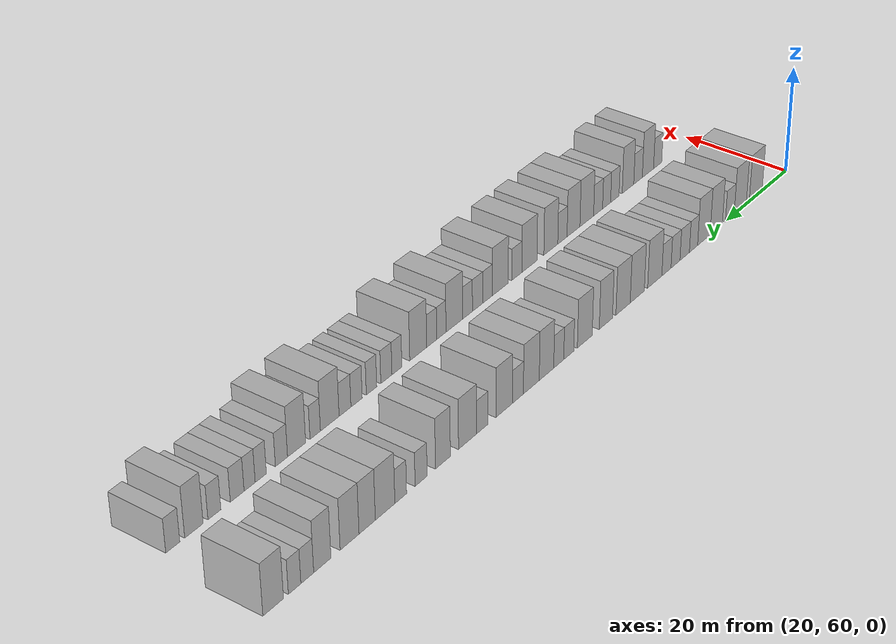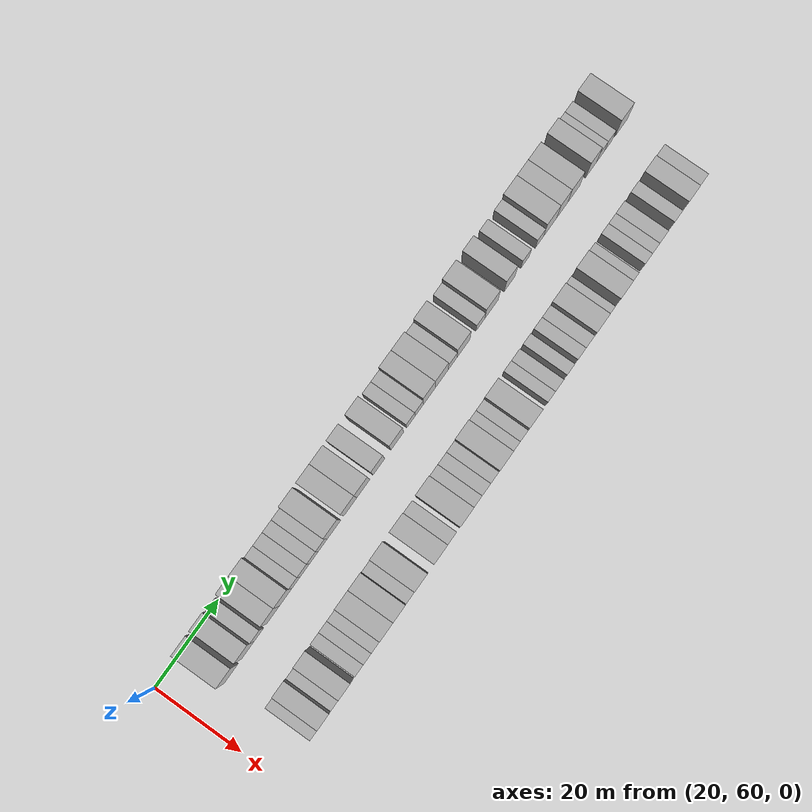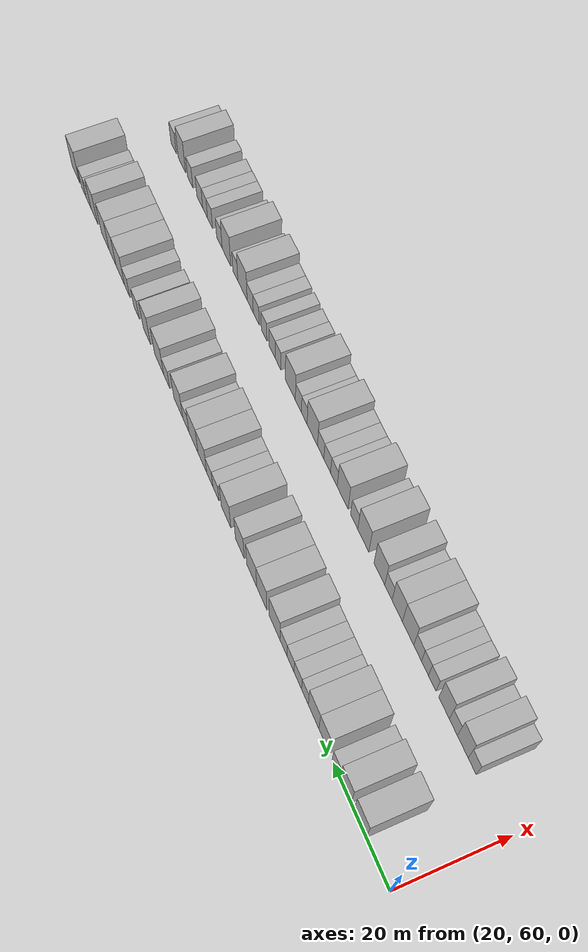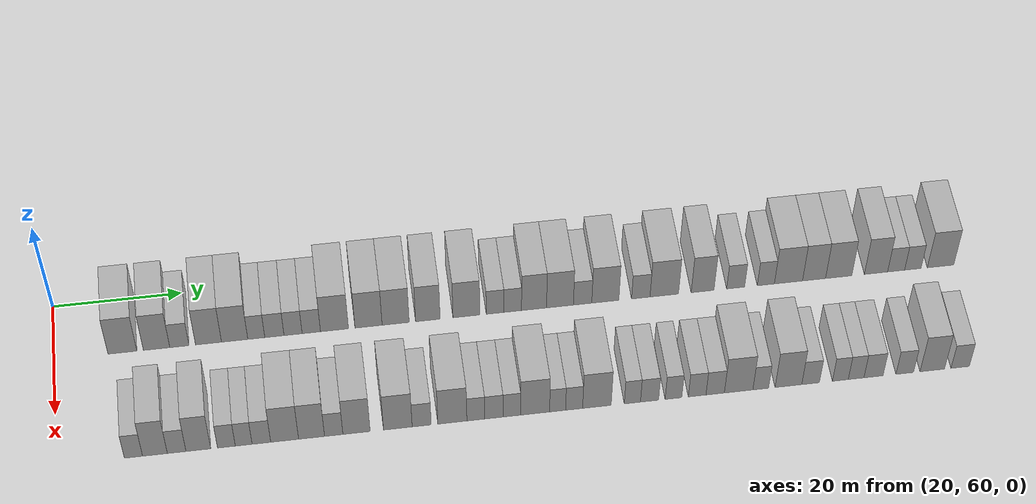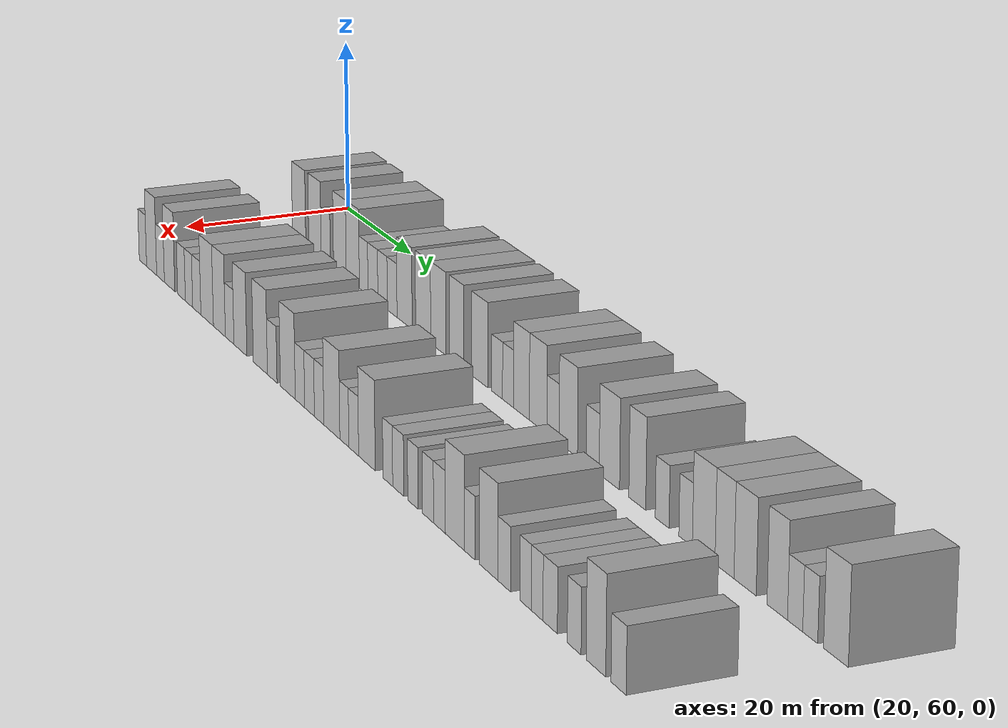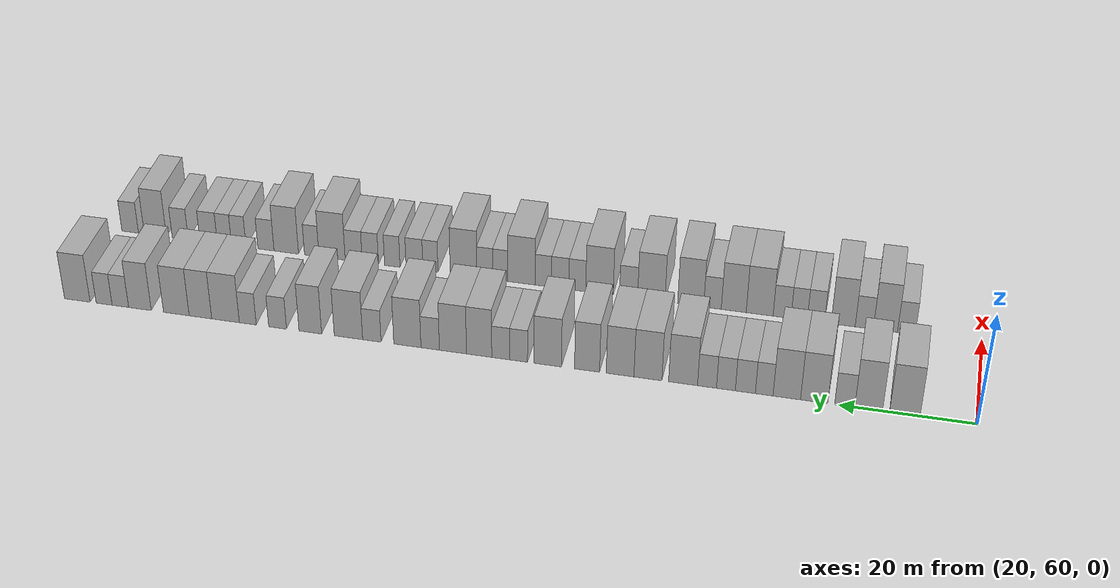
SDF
<sdf version="1.6">
 <world name="default">
  <model name="building_68">
   <static>1</static>
   <pose>25.0000 70.4082 0 0.000000 0.000000 0.000000</pose>
   <link name="link">
    <pose>0 0 4.50 0 0 0</pose>
    <collision name="collision"><geometry><box><size>10.0000 4.4041 9.0000</size></box></geometry></collision>
    <visual name="visual">
     <cast_shadows>0</cast_shadows>
     <geometry><box><size>10.0000 4.4041 9.0000</size></box></geometry>
     <material>
      <script>
       <uri>model://HANNAS_wall/materials/scripts</uri>
       <uri>model://HANNAS_wall/materials/textures</uri>
       <name>vrc/HANNAS_wall</name>
      </script>
     </material>
    </visual>
   </link>
  </model>
  <model name="building_69">
   <static>1</static>
   <pose>25.0000 75.6271 0 0.000000 0.000000 0.000000</pose>
   <link name="link">
    <pose>0 0 4.50 0 0 0</pose>
    <collision name="collision"><geometry><box><size>10.0000 4.0338 9.0000</size></box></geometry></collision>
    <visual name="visual">
     <cast_shadows>0</cast_shadows>
     <geometry><box><size>10.0000 4.0338 9.0000</size></box></geometry>
     <material>
      <script>
       <uri>model://HANNAS_wall/materials/scripts</uri>
       <uri>model://HANNAS_wall/materials/textures</uri>
       <name>vrc/HANNAS_wall</name>
      </script>
     </material>
    </visual>
   </link>
  </model>
  <model name="building_70">
   <static>1</static>
   <pose>25.0000 79.1093 0 0.000000 0.000000 0.000000</pose>
   <link name="link">
    <pose>0 0 3.00 0 0 0</pose>
    <collision name="collision"><geometry><box><size>10.0000 2.9306 6.0000</size></box></geometry></collision>
    <visual name="visual">
     <cast_shadows>0</cast_shadows>
     <geometry><box><size>10.0000 2.9306 6.0000</size></box></geometry>
     <material>
      <script>
       <uri>model://HANNAS_wall/materials/scripts</uri>
       <uri>model://HANNAS_wall/materials/textures</uri>
       <name>vrc/HANNAS_wall</name>
      </script>
     </material>
    </visual>
   </link>
  </model>
  <model name="building_71">
   <static>1</static>
   <pose>25.0000 83.5662 0 0.000000 0.000000 0.000000</pose>
   <link name="link">
    <pose>0 0 4.50 0 0 0</pose>
    <collision name="collision"><geometry><box><size>10.0000 3.9833 9.0000</size></box></geometry></collision>
    <visual name="visual">
     <cast_shadows>0</cast_shadows>
     <geometry><box><size>10.0000 3.9833 9.0000</size></box></geometry>
     <material>
      <script>
       <uri>model://HANNAS_wall/materials/scripts</uri>
       <uri>model://HANNAS_wall/materials/textures</uri>
       <name>vrc/HANNAS_wall</name>
      </script>
     </material>
    </visual>
   </link>
  </model>
  <model name="building_72">
   <static>1</static>
   <pose>25.0000 87.5739 0 0.000000 0.000000 0.000000</pose>
   <link name="link">
    <pose>0 0 4.50 0 0 0</pose>
    <collision name="collision"><geometry><box><size>10.0000 4.0321 9.0000</size></box></geometry></collision>
    <visual name="visual">
     <cast_shadows>0</cast_shadows>
     <geometry><box><size>10.0000 4.0321 9.0000</size></box></geometry>
     <material>
      <script>
       <uri>model://HANNAS_wall/materials/scripts</uri>
       <uri>model://HANNAS_wall/materials/textures</uri>
       <name>vrc/HANNAS_wall</name>
      </script>
     </material>
    </visual>
   </link>
  </model>
  <model name="building_73">
   <static>1</static>
   <pose>25.0000 90.8936 0 0.000000 0.000000 0.000000</pose>
   <link name="link">
    <pose>0 0 3.00 0 0 0</pose>
    <collision name="collision"><geometry><box><size>10.0000 2.6073 6.0000</size></box></geometry></collision>
    <visual name="visual">
     <cast_shadows>0</cast_shadows>
     <geometry><box><size>10.0000 2.6073 6.0000</size></box></geometry>
     <material>
      <script>
       <uri>model://HANNAS_wall/materials/scripts</uri>
       <uri>model://HANNAS_wall/materials/textures</uri>
       <name>vrc/HANNAS_wall</name>
      </script>
     </material>
    </visual>
   </link>
  </model>
  <model name="building_74">
   <static>1</static>
   <pose>25.0000 93.6760 0 0.000000 0.000000 0.000000</pose>
   <link name="link">
    <pose>0 0 3.00 0 0 0</pose>
    <collision name="collision"><geometry><box><size>10.0000 2.9575 6.0000</size></box></geometry></collision>
    <visual name="visual">
     <cast_shadows>0</cast_shadows>
     <geometry><box><size>10.0000 2.9575 6.0000</size></box></geometry>
     <material>
      <script>
       <uri>model://HANNAS_wall/materials/scripts</uri>
       <uri>model://HANNAS_wall/materials/textures</uri>
       <name>vrc/HANNAS_wall</name>
      </script>
     </material>
    </visual>
   </link>
  </model>
  <model name="building_75">
   <static>1</static>
   <pose>25.0000 96.5493 0 0.000000 0.000000 0.000000</pose>
   <link name="link">
    <pose>0 0 3.00 0 0 0</pose>
    <collision name="collision"><geometry><box><size>10.0000 2.7892 6.0000</size></box></geometry></collision>
    <visual name="visual">
     <cast_shadows>0</cast_shadows>
     <geometry><box><size>10.0000 2.7892 6.0000</size></box></geometry>
     <material>
      <script>
       <uri>model://HANNAS_wall/materials/scripts</uri>
       <uri>model://HANNAS_wall/materials/textures</uri>
       <name>vrc/HANNAS_wall</name>
      </script>
     </material>
    </visual>
   </link>
  </model>
  <model name="building_76">
   <static>1</static>
   <pose>25.0000 99.3554 0 0.000000 0.000000 0.000000</pose>
   <link name="link">
    <pose>0 0 3.00 0 0 0</pose>
    <collision name="collision"><geometry><box><size>10.0000 2.8229 6.0000</size></box></geometry></collision>
    <visual name="visual">
     <cast_shadows>0</cast_shadows>
     <geometry><box><size>10.0000 2.8229 6.0000</size></box></geometry>
     <material>
      <script>
       <uri>model://HANNAS_wall/materials/scripts</uri>
       <uri>model://HANNAS_wall/materials/textures</uri>
       <name>vrc/HANNAS_wall</name>
      </script>
     </material>
    </visual>
   </link>
  </model>
  <model name="building_77">
   <static>1</static>
   <pose>25.0000 102.9287 0 0.000000 0.000000 0.000000</pose>
   <link name="link">
    <pose>0 0 4.50 0 0 0</pose>
    <collision name="collision"><geometry><box><size>10.0000 4.3237 9.0000</size></box></geometry></collision>
    <visual name="visual">
     <cast_shadows>0</cast_shadows>
     <geometry><box><size>10.0000 4.3237 9.0000</size></box></geometry>
     <material>
      <script>
       <uri>model://HANNAS_wall/materials/scripts</uri>
       <uri>model://HANNAS_wall/materials/textures</uri>
       <name>vrc/HANNAS_wall</name>
      </script>
     </material>
    </visual>
   </link>
  </model>
  <model name="building_78">
   <static>1</static>
   <pose>25.0000 108.1905 0 0.000000 0.000000 0.000000</pose>
   <link name="link">
    <pose>0 0 4.50 0 0 0</pose>
    <collision name="collision"><geometry><box><size>10.0000 4.1999 9.0000</size></box></geometry></collision>
    <visual name="visual">
     <cast_shadows>0</cast_shadows>
     <geometry><box><size>10.0000 4.1999 9.0000</size></box></geometry>
     <material>
      <script>
       <uri>model://HANNAS_wall/materials/scripts</uri>
       <uri>model://HANNAS_wall/materials/textures</uri>
       <name>vrc/HANNAS_wall</name>
      </script>
     </material>
    </visual>
   </link>
  </model>
  <model name="building_79">
   <static>1</static>
   <pose>25.0000 112.3857 0 0.000000 0.000000 0.000000</pose>
   <link name="link">
    <pose>0 0 4.50 0 0 0</pose>
    <collision name="collision"><geometry><box><size>10.0000 4.1905 9.0000</size></box></geometry></collision>
    <visual name="visual">
     <cast_shadows>0</cast_shadows>
     <geometry><box><size>10.0000 4.1905 9.0000</size></box></geometry>
     <material>
      <script>
       <uri>model://HANNAS_wall/materials/scripts</uri>
       <uri>model://HANNAS_wall/materials/textures</uri>
       <name>vrc/HANNAS_wall</name>
      </script>
     </material>
    </visual>
   </link>
  </model>
  <model name="building_80">
   <static>1</static>
   <pose>25.0000 117.3806 0 0.000000 0.000000 0.000000</pose>
   <link name="link">
    <pose>0 0 4.50 0 0 0</pose>
    <collision name="collision"><geometry><box><size>10.0000 3.7992 9.0000</size></box></geometry></collision>
    <visual name="visual">
     <cast_shadows>0</cast_shadows>
     <geometry><box><size>10.0000 3.7992 9.0000</size></box></geometry>
     <material>
      <script>
       <uri>model://HANNAS_wall/materials/scripts</uri>
       <uri>model://HANNAS_wall/materials/textures</uri>
       <name>vrc/HANNAS_wall</name>
      </script>
     </material>
    </visual>
   </link>
  </model>
  <model name="building_81">
   <static>1</static>
   <pose>25.0000 123.3707 0 0.000000 0.000000 0.000000</pose>
   <link name="link">
    <pose>0 0 4.50 0 0 0</pose>
    <collision name="collision"><geometry><box><size>10.0000 4.1810 9.0000</size></box></geometry></collision>
    <visual name="visual">
     <cast_shadows>0</cast_shadows>
     <geometry><box><size>10.0000 4.1810 9.0000</size></box></geometry>
     <material>
      <script>
       <uri>model://HANNAS_wall/materials/scripts</uri>
       <uri>model://HANNAS_wall/materials/textures</uri>
       <name>vrc/HANNAS_wall</name>
      </script>
     </material>
    </visual>
   </link>
  </model>
  <model name="building_82">
   <static>1</static>
   <pose>25.0000 127.8391 0 0.000000 0.000000 0.000000</pose>
   <link name="link">
    <pose>0 0 3.00 0 0 0</pose>
    <collision name="collision"><geometry><box><size>10.0000 2.7557 6.0000</size></box></geometry></collision>
    <visual name="visual">
     <cast_shadows>0</cast_shadows>
     <geometry><box><size>10.0000 2.7557 6.0000</size></box></geometry>
     <material>
      <script>
       <uri>model://HANNAS_wall/materials/scripts</uri>
       <uri>model://HANNAS_wall/materials/textures</uri>
       <name>vrc/HANNAS_wall</name>
      </script>
     </material>
    </visual>
   </link>
  </model>
  <model name="building_83">
   <static>1</static>
   <pose>25.0000 130.5859 0 0.000000 0.000000 0.000000</pose>
   <link name="link">
    <pose>0 0 3.00 0 0 0</pose>
    <collision name="collision"><geometry><box><size>10.0000 2.7380 6.0000</size></box></geometry></collision>
    <visual name="visual">
     <cast_shadows>0</cast_shadows>
     <geometry><box><size>10.0000 2.7380 6.0000</size></box></geometry>
     <material>
      <script>
       <uri>model://HANNAS_wall/materials/scripts</uri>
       <uri>model://HANNAS_wall/materials/textures</uri>
       <name>vrc/HANNAS_wall</name>
      </script>
     </material>
    </visual>
   </link>
  </model>
  <model name="building_84">
   <static>1</static>
   <pose>25.0000 133.9101 0 0.000000 0.000000 0.000000</pose>
   <link name="link">
    <pose>0 0 4.50 0 0 0</pose>
    <collision name="collision"><geometry><box><size>10.0000 3.9104 9.0000</size></box></geometry></collision>
    <visual name="visual">
     <cast_shadows>0</cast_shadows>
     <geometry><box><size>10.0000 3.9104 9.0000</size></box></geometry>
     <material>
      <script>
       <uri>model://HANNAS_wall/materials/scripts</uri>
       <uri>model://HANNAS_wall/materials/textures</uri>
       <name>vrc/HANNAS_wall</name>
      </script>
     </material>
    </visual>
   </link>
  </model>
  <model name="building_85">
   <static>1</static>
   <pose>25.0000 137.9681 0 0.000000 0.000000 0.000000</pose>
   <link name="link">
    <pose>0 0 4.50 0 0 0</pose>
    <collision name="collision"><geometry><box><size>10.0000 4.2056 9.0000</size></box></geometry></collision>
    <visual name="visual">
     <cast_shadows>0</cast_shadows>
     <geometry><box><size>10.0000 4.2056 9.0000</size></box></geometry>
     <material>
      <script>
       <uri>model://HANNAS_wall/materials/scripts</uri>
       <uri>model://HANNAS_wall/materials/textures</uri>
       <name>vrc/HANNAS_wall</name>
      </script>
     </material>
    </visual>
   </link>
  </model>
  <model name="building_86">
   <static>1</static>
   <pose>25.0000 141.5095 0 0.000000 0.000000 0.000000</pose>
   <link name="link">
    <pose>0 0 3.00 0 0 0</pose>
    <collision name="collision"><geometry><box><size>10.0000 2.8770 6.0000</size></box></geometry></collision>
    <visual name="visual">
     <cast_shadows>0</cast_shadows>
     <geometry><box><size>10.0000 2.8770 6.0000</size></box></geometry>
     <material>
      <script>
       <uri>model://HANNAS_wall/materials/scripts</uri>
       <uri>model://HANNAS_wall/materials/textures</uri>
       <name>vrc/HANNAS_wall</name>
      </script>
     </material>
    </visual>
   </link>
  </model>
  <model name="building_87">
   <static>1</static>
   <pose>25.0000 145.0721 0 0.000000 0.000000 0.000000</pose>
   <link name="link">
    <pose>0 0 4.50 0 0 0</pose>
    <collision name="collision"><geometry><box><size>10.0000 4.2482 9.0000</size></box></geometry></collision>
    <visual name="visual">
     <cast_shadows>0</cast_shadows>
     <geometry><box><size>10.0000 4.2482 9.0000</size></box></geometry>
     <material>
      <script>
       <uri>model://HANNAS_wall/materials/scripts</uri>
       <uri>model://HANNAS_wall/materials/textures</uri>
       <name>vrc/HANNAS_wall</name>
      </script>
     </material>
    </visual>
   </link>
  </model>
  <model name="building_88">
   <static>1</static>
   <pose>25.0000 150.6475 0 0.000000 0.000000 0.000000</pose>
   <link name="link">
    <pose>0 0 3.00 0 0 0</pose>
    <collision name="collision"><geometry><box><size>10.0000 2.9027 6.0000</size></box></geometry></collision>
    <visual name="visual">
     <cast_shadows>0</cast_shadows>
     <geometry><box><size>10.0000 2.9027 6.0000</size></box></geometry>
     <material>
      <script>
       <uri>model://HANNAS_wall/materials/scripts</uri>
       <uri>model://HANNAS_wall/materials/textures</uri>
       <name>vrc/HANNAS_wall</name>
      </script>
     </material>
    </visual>
   </link>
  </model>
  <model name="building_89">
   <static>1</static>
   <pose>25.0000 154.3405 0 0.000000 0.000000 0.000000</pose>
   <link name="link">
    <pose>0 0 4.50 0 0 0</pose>
    <collision name="collision"><geometry><box><size>10.0000 4.4834 9.0000</size></box></geometry></collision>
    <visual name="visual">
     <cast_shadows>0</cast_shadows>
     <geometry><box><size>10.0000 4.4834 9.0000</size></box></geometry>
     <material>
      <script>
       <uri>model://HANNAS_wall/materials/scripts</uri>
       <uri>model://HANNAS_wall/materials/textures</uri>
       <name>vrc/HANNAS_wall</name>
      </script>
     </material>
    </visual>
   </link>
  </model>
  <model name="building_90">
   <static>1</static>
   <pose>25.0000 160.3833 0 0.000000 0.000000 0.000000</pose>
   <link name="link">
    <pose>0 0 4.50 0 0 0</pose>
    <collision name="collision"><geometry><box><size>10.0000 3.6021 9.0000</size></box></geometry></collision>
    <visual name="visual">
     <cast_shadows>0</cast_shadows>
     <geometry><box><size>10.0000 3.6021 9.0000</size></box></geometry>
     <material>
      <script>
       <uri>model://HANNAS_wall/materials/scripts</uri>
       <uri>model://HANNAS_wall/materials/textures</uri>
       <name>vrc/HANNAS_wall</name>
      </script>
     </material>
    </visual>
   </link>
  </model>
  <model name="building_91">
   <static>1</static>
   <pose>25.0000 165.6106 0 0.000000 0.000000 0.000000</pose>
   <link name="link">
    <pose>0 0 3.00 0 0 0</pose>
    <collision name="collision"><geometry><box><size>10.0000 2.8525 6.0000</size></box></geometry></collision>
    <visual name="visual">
     <cast_shadows>0</cast_shadows>
     <geometry><box><size>10.0000 2.8525 6.0000</size></box></geometry>
     <material>
      <script>
       <uri>model://HANNAS_wall/materials/scripts</uri>
       <uri>model://HANNAS_wall/materials/textures</uri>
       <name>vrc/HANNAS_wall</name>
      </script>
     </material>
    </visual>
   </link>
  </model>
  <model name="building_92">
   <static>1</static>
   <pose>25.0000 170.3947 0 0.000000 0.000000 0.000000</pose>
   <link name="link">
    <pose>0 0 3.00 0 0 0</pose>
    <collision name="collision"><geometry><box><size>10.0000 2.7158 6.0000</size></box></geometry></collision>
    <visual name="visual">
     <cast_shadows>0</cast_shadows>
     <geometry><box><size>10.0000 2.7158 6.0000</size></box></geometry>
     <material>
      <script>
       <uri>model://HANNAS_wall/materials/scripts</uri>
       <uri>model://HANNAS_wall/materials/textures</uri>
       <name>vrc/HANNAS_wall</name>
      </script>
     </material>
    </visual>
   </link>
  </model>
  <model name="building_93">
   <static>1</static>
   <pose>25.0000 173.9853 0 0.000000 0.000000 0.000000</pose>
   <link name="link">
    <pose>0 0 4.50 0 0 0</pose>
    <collision name="collision"><geometry><box><size>10.0000 4.4653 9.0000</size></box></geometry></collision>
    <visual name="visual">
     <cast_shadows>0</cast_shadows>
     <geometry><box><size>10.0000 4.4653 9.0000</size></box></geometry>
     <material>
      <script>
       <uri>model://HANNAS_wall/materials/scripts</uri>
       <uri>model://HANNAS_wall/materials/textures</uri>
       <name>vrc/HANNAS_wall</name>
      </script>
     </material>
    </visual>
   </link>
  </model>
  <model name="building_94">
   <static>1</static>
   <pose>25.0000 178.0487 0 0.000000 0.000000 0.000000</pose>
   <link name="link">
    <pose>0 0 4.50 0 0 0</pose>
    <collision name="collision"><geometry><box><size>10.0000 3.6616 9.0000</size></box></geometry></collision>
    <visual name="visual">
     <cast_shadows>0</cast_shadows>
     <geometry><box><size>10.0000 3.6616 9.0000</size></box></geometry>
     <material>
      <script>
       <uri>model://HANNAS_wall/materials/scripts</uri>
       <uri>model://HANNAS_wall/materials/textures</uri>
       <name>vrc/HANNAS_wall</name>
      </script>
     </material>
    </visual>
   </link>
  </model>
  <model name="building_95">
   <static>1</static>
   <pose>25.0000 181.9697 0 0.000000 0.000000 0.000000</pose>
   <link name="link">
    <pose>0 0 4.50 0 0 0</pose>
    <collision name="collision"><geometry><box><size>10.0000 4.1803 9.0000</size></box></geometry></collision>
    <visual name="visual">
     <cast_shadows>0</cast_shadows>
     <geometry><box><size>10.0000 4.1803 9.0000</size></box></geometry>
     <material>
      <script>
       <uri>model://HANNAS_wall/materials/scripts</uri>
       <uri>model://HANNAS_wall/materials/textures</uri>
       <name>vrc/HANNAS_wall</name>
      </script>
     </material>
    </visual>
   </link>
  </model>
  <model name="building_96">
   <static>1</static>
   <pose>25.0000 187.9160 0 0.000000 0.000000 0.000000</pose>
   <link name="link">
    <pose>0 0 4.50 0 0 0</pose>
    <collision name="collision"><geometry><box><size>10.0000 3.7124 9.0000</size></box></geometry></collision>
    <visual name="visual">
     <cast_shadows>0</cast_shadows>
     <geometry><box><size>10.0000 3.7124 9.0000</size></box></geometry>
     <material>
      <script>
       <uri>model://HANNAS_wall/materials/scripts</uri>
       <uri>model://HANNAS_wall/materials/textures</uri>
       <name>vrc/HANNAS_wall</name>
      </script>
     </material>
    </visual>
   </link>
  </model>
  <model name="building_97">
   <static>1</static>
   <pose>25.0000 191.1307 0 0.000000 0.000000 0.000000</pose>
   <link name="link">
    <pose>0 0 3.00 0 0 0</pose>
    <collision name="collision"><geometry><box><size>10.0000 2.7171 6.0000</size></box></geometry></collision>
    <visual name="visual">
     <cast_shadows>0</cast_shadows>
     <geometry><box><size>10.0000 2.7171 6.0000</size></box></geometry>
     <material>
      <script>
       <uri>model://HANNAS_wall/materials/scripts</uri>
       <uri>model://HANNAS_wall/materials/textures</uri>
       <name>vrc/HANNAS_wall</name>
      </script>
     </material>
    </visual>
   </link>
  </model>
  <model name="building_98">
   <static>1</static>
   <pose>25.0000 193.8050 0 0.000000 0.000000 0.000000</pose>
   <link name="link">
    <pose>0 0 3.00 0 0 0</pose>
    <collision name="collision"><geometry><box><size>10.0000 2.6315 6.0000</size></box></geometry></collision>
    <visual name="visual">
     <cast_shadows>0</cast_shadows>
     <geometry><box><size>10.0000 2.6315 6.0000</size></box></geometry>
     <material>
      <script>
       <uri>model://HANNAS_wall/materials/scripts</uri>
       <uri>model://HANNAS_wall/materials/textures</uri>
       <name>vrc/HANNAS_wall</name>
      </script>
     </material>
    </visual>
   </link>
  </model>
  <model name="building_99">
   <static>1</static>
   <pose>25.0000 198.2420 0 0.000000 0.000000 0.000000</pose>
   <link name="link">
    <pose>0 0 4.50 0 0 0</pose>
    <collision name="collision"><geometry><box><size>10.0000 4.2426 9.0000</size></box></geometry></collision>
    <visual name="visual">
     <cast_shadows>0</cast_shadows>
     <geometry><box><size>10.0000 4.2426 9.0000</size></box></geometry>
     <material>
      <script>
       <uri>model://HANNAS_wall/materials/scripts</uri>
       <uri>model://HANNAS_wall/materials/textures</uri>
       <name>vrc/HANNAS_wall</name>
      </script>
     </material>
    </visual>
   </link>
  </model>
  <model name="building_168">
   <static>1</static>
   <pose>44.0000 71.3753 0 0.000000 0.000000 0.000000</pose>
   <link name="link">
    <pose>0 0 3.00 0 0 0</pose>
    <collision name="collision"><geometry><box><size>10.0000 2.6836 6.0000</size></box></geometry></collision>
    <visual name="visual">
     <cast_shadows>0</cast_shadows>
     <geometry><box><size>10.0000 2.6836 6.0000</size></box></geometry>
     <material>
      <script>
       <uri>model://HANNAS_wall/materials/scripts</uri>
       <uri>model://HANNAS_wall/materials/textures</uri>
       <name>vrc/HANNAS_wall</name>
      </script>
     </material>
    </visual>
   </link>
  </model>
  <model name="building_169">
   <static>1</static>
   <pose>44.0000 74.5499 0 0.000000 0.000000 0.000000</pose>
   <link name="link">
    <pose>0 0 4.50 0 0 0</pose>
    <collision name="collision"><geometry><box><size>10.0000 3.6655 9.0000</size></box></geometry></collision>
    <visual name="visual">
     <cast_shadows>0</cast_shadows>
     <geometry><box><size>10.0000 3.6655 9.0000</size></box></geometry>
     <material>
      <script>
       <uri>model://HANNAS_wall/materials/scripts</uri>
       <uri>model://HANNAS_wall/materials/textures</uri>
       <name>vrc/HANNAS_wall</name>
      </script>
     </material>
    </visual>
   </link>
  </model>
  <model name="building_170">
   <static>1</static>
   <pose>44.0000 77.7664 0 0.000000 0.000000 0.000000</pose>
   <link name="link">
    <pose>0 0 3.00 0 0 0</pose>
    <collision name="collision"><geometry><box><size>10.0000 2.7676 6.0000</size></box></geometry></collision>
    <visual name="visual">
     <cast_shadows>0</cast_shadows>
     <geometry><box><size>10.0000 2.7676 6.0000</size></box></geometry>
     <material>
      <script>
       <uri>model://HANNAS_wall/materials/scripts</uri>
       <uri>model://HANNAS_wall/materials/textures</uri>
       <name>vrc/HANNAS_wall</name>
      </script>
     </material>
    </visual>
   </link>
  </model>
  <model name="building_171">
   <static>1</static>
   <pose>44.0000 80.9912 0 0.000000 0.000000 0.000000</pose>
   <link name="link">
    <pose>0 0 4.50 0 0 0</pose>
    <collision name="collision"><geometry><box><size>10.0000 3.6820 9.0000</size></box></geometry></collision>
    <visual name="visual">
     <cast_shadows>0</cast_shadows>
     <geometry><box><size>10.0000 3.6820 9.0000</size></box></geometry>
     <material>
      <script>
       <uri>model://HANNAS_wall/materials/scripts</uri>
       <uri>model://HANNAS_wall/materials/textures</uri>
       <name>vrc/HANNAS_wall</name>
      </script>
     </material>
    </visual>
   </link>
  </model>
  <model name="building_172">
   <static>1</static>
   <pose>44.0000 85.1569 0 0.000000 0.000000 0.000000</pose>
   <link name="link">
    <pose>0 0 3.00 0 0 0</pose>
    <collision name="collision"><geometry><box><size>10.0000 2.6494 6.0000</size></box></geometry></collision>
    <visual name="visual">
     <cast_shadows>0</cast_shadows>
     <geometry><box><size>10.0000 2.6494 6.0000</size></box></geometry>
     <material>
      <script>
       <uri>model://HANNAS_wall/materials/scripts</uri>
       <uri>model://HANNAS_wall/materials/textures</uri>
       <name>vrc/HANNAS_wall</name>
      </script>
     </material>
    </visual>
   </link>
  </model>
  <model name="building_173">
   <static>1</static>
   <pose>44.0000 87.7339 0 0.000000 0.000000 0.000000</pose>
   <link name="link">
    <pose>0 0 3.00 0 0 0</pose>
    <collision name="collision"><geometry><box><size>10.0000 2.5047 6.0000</size></box></geometry></collision>
    <visual name="visual">
     <cast_shadows>0</cast_shadows>
     <geometry><box><size>10.0000 2.5047 6.0000</size></box></geometry>
     <material>
      <script>
       <uri>model://HANNAS_wall/materials/scripts</uri>
       <uri>model://HANNAS_wall/materials/textures</uri>
       <name>vrc/HANNAS_wall</name>
      </script>
     </material>
    </visual>
   </link>
  </model>
  <model name="building_174">
   <static>1</static>
   <pose>44.0000 90.3691 0 0.000000 0.000000 0.000000</pose>
   <link name="link">
    <pose>0 0 3.00 0 0 0</pose>
    <collision name="collision"><geometry><box><size>10.0000 2.7655 6.0000</size></box></geometry></collision>
    <visual name="visual">
     <cast_shadows>0</cast_shadows>
     <geometry><box><size>10.0000 2.7655 6.0000</size></box></geometry>
     <material>
      <script>
       <uri>model://HANNAS_wall/materials/scripts</uri>
       <uri>model://HANNAS_wall/materials/textures</uri>
       <name>vrc/HANNAS_wall</name>
      </script>
     </material>
    </visual>
   </link>
  </model>
  <model name="building_175">
   <static>1</static>
   <pose>44.0000 93.8347 0 0.000000 0.000000 0.000000</pose>
   <link name="link">
    <pose>0 0 4.50 0 0 0</pose>
    <collision name="collision"><geometry><box><size>10.0000 4.1658 9.0000</size></box></geometry></collision>
    <visual name="visual">
     <cast_shadows>0</cast_shadows>
     <geometry><box><size>10.0000 4.1658 9.0000</size></box></geometry>
     <material>
      <script>
       <uri>model://HANNAS_wall/materials/scripts</uri>
       <uri>model://HANNAS_wall/materials/textures</uri>
       <name>vrc/HANNAS_wall</name>
      </script>
     </material>
    </visual>
   </link>
  </model>
  <model name="building_176">
   <static>1</static>
   <pose>44.0000 97.8576 0 0.000000 0.000000 0.000000</pose>
   <link name="link">
    <pose>0 0 4.50 0 0 0</pose>
    <collision name="collision"><geometry><box><size>10.0000 3.8800 9.0000</size></box></geometry></collision>
    <visual name="visual">
     <cast_shadows>0</cast_shadows>
     <geometry><box><size>10.0000 3.8800 9.0000</size></box></geometry>
     <material>
      <script>
       <uri>model://HANNAS_wall/materials/scripts</uri>
       <uri>model://HANNAS_wall/materials/textures</uri>
       <name>vrc/HANNAS_wall</name>
      </script>
     </material>
    </visual>
   </link>
  </model>
  <model name="building_177">
   <static>1</static>
   <pose>44.0000 101.1716 0 0.000000 0.000000 0.000000</pose>
   <link name="link">
    <pose>0 0 3.00 0 0 0</pose>
    <collision name="collision"><geometry><box><size>10.0000 2.7480 6.0000</size></box></geometry></collision>
    <visual name="visual">
     <cast_shadows>0</cast_shadows>
     <geometry><box><size>10.0000 2.7480 6.0000</size></box></geometry>
     <material>
      <script>
       <uri>model://HANNAS_wall/materials/scripts</uri>
       <uri>model://HANNAS_wall/materials/textures</uri>
       <name>vrc/HANNAS_wall</name>
      </script>
     </material>
    </visual>
   </link>
  </model>
  <model name="building_178">
   <static>1</static>
   <pose>44.0000 104.5865 0 0.000000 0.000000 0.000000</pose>
   <link name="link">
    <pose>0 0 4.50 0 0 0</pose>
    <collision name="collision"><geometry><box><size>10.0000 4.0817 9.0000</size></box></geometry></collision>
    <visual name="visual">
     <cast_shadows>0</cast_shadows>
     <geometry><box><size>10.0000 4.0817 9.0000</size></box></geometry>
     <material>
      <script>
       <uri>model://HANNAS_wall/materials/scripts</uri>
       <uri>model://HANNAS_wall/materials/textures</uri>
       <name>vrc/HANNAS_wall</name>
      </script>
     </material>
    </visual>
   </link>
  </model>
  <model name="building_179">
   <static>1</static>
   <pose>44.0000 110.7850 0 0.000000 0.000000 0.000000</pose>
   <link name="link">
    <pose>0 0 4.50 0 0 0</pose>
    <collision name="collision"><geometry><box><size>10.0000 4.3154 9.0000</size></box></geometry></collision>
    <visual name="visual">
     <cast_shadows>0</cast_shadows>
     <geometry><box><size>10.0000 4.3154 9.0000</size></box></geometry>
     <material>
      <script>
       <uri>model://HANNAS_wall/materials/scripts</uri>
       <uri>model://HANNAS_wall/materials/textures</uri>
       <name>vrc/HANNAS_wall</name>
      </script>
     </material>
    </visual>
   </link>
  </model>
  <model name="building_180">
   <static>1</static>
   <pose>44.0000 114.3750 0 0.000000 0.000000 0.000000</pose>
   <link name="link">
    <pose>0 0 3.00 0 0 0</pose>
    <collision name="collision"><geometry><box><size>10.0000 2.8647 6.0000</size></box></geometry></collision>
    <visual name="visual">
     <cast_shadows>0</cast_shadows>
     <geometry><box><size>10.0000 2.8647 6.0000</size></box></geometry>
     <material>
      <script>
       <uri>model://HANNAS_wall/materials/scripts</uri>
       <uri>model://HANNAS_wall/materials/textures</uri>
       <name>vrc/HANNAS_wall</name>
      </script>
     </material>
    </visual>
   </link>
  </model>
  <model name="building_181">
   <static>1</static>
   <pose>44.0000 118.9975 0 0.000000 0.000000 0.000000</pose>
   <link name="link">
    <pose>0 0 4.50 0 0 0</pose>
    <collision name="collision"><geometry><box><size>10.0000 4.3803 9.0000</size></box></geometry></collision>
    <visual name="visual">
     <cast_shadows>0</cast_shadows>
     <geometry><box><size>10.0000 4.3803 9.0000</size></box></geometry>
     <material>
      <script>
       <uri>model://HANNAS_wall/materials/scripts</uri>
       <uri>model://HANNAS_wall/materials/textures</uri>
       <name>vrc/HANNAS_wall</name>
      </script>
     </material>
    </visual>
   </link>
  </model>
  <model name="building_182">
   <static>1</static>
   <pose>44.0000 122.5418 0 0.000000 0.000000 0.000000</pose>
   <link name="link">
    <pose>0 0 3.00 0 0 0</pose>
    <collision name="collision"><geometry><box><size>10.0000 2.7082 6.0000</size></box></geometry></collision>
    <visual name="visual">
     <cast_shadows>0</cast_shadows>
     <geometry><box><size>10.0000 2.7082 6.0000</size></box></geometry>
     <material>
      <script>
       <uri>model://HANNAS_wall/materials/scripts</uri>
       <uri>model://HANNAS_wall/materials/textures</uri>
       <name>vrc/HANNAS_wall</name>
      </script>
     </material>
    </visual>
   </link>
  </model>
  <model name="building_183">
   <static>1</static>
   <pose>44.0000 125.2761 0 0.000000 0.000000 0.000000</pose>
   <link name="link">
    <pose>0 0 3.00 0 0 0</pose>
    <collision name="collision"><geometry><box><size>10.0000 2.7605 6.0000</size></box></geometry></collision>
    <visual name="visual">
     <cast_shadows>0</cast_shadows>
     <geometry><box><size>10.0000 2.7605 6.0000</size></box></geometry>
     <material>
      <script>
       <uri>model://HANNAS_wall/materials/scripts</uri>
       <uri>model://HANNAS_wall/materials/textures</uri>
       <name>vrc/HANNAS_wall</name>
      </script>
     </material>
    </visual>
   </link>
  </model>
  <model name="building_184">
   <static>1</static>
   <pose>44.0000 127.9756 0 0.000000 0.000000 0.000000</pose>
   <link name="link">
    <pose>0 0 3.00 0 0 0</pose>
    <collision name="collision"><geometry><box><size>10.0000 2.6386 6.0000</size></box></geometry></collision>
    <visual name="visual">
     <cast_shadows>0</cast_shadows>
     <geometry><box><size>10.0000 2.6386 6.0000</size></box></geometry>
     <material>
      <script>
       <uri>model://HANNAS_wall/materials/scripts</uri>
       <uri>model://HANNAS_wall/materials/textures</uri>
       <name>vrc/HANNAS_wall</name>
      </script>
     </material>
    </visual>
   </link>
  </model>
  <model name="building_185">
   <static>1</static>
   <pose>44.0000 131.4956 0 0.000000 0.000000 0.000000</pose>
   <link name="link">
    <pose>0 0 4.50 0 0 0</pose>
    <collision name="collision"><geometry><box><size>10.0000 4.4014 9.0000</size></box></geometry></collision>
    <visual name="visual">
     <cast_shadows>0</cast_shadows>
     <geometry><box><size>10.0000 4.4014 9.0000</size></box></geometry>
     <material>
      <script>
       <uri>model://HANNAS_wall/materials/scripts</uri>
       <uri>model://HANNAS_wall/materials/textures</uri>
       <name>vrc/HANNAS_wall</name>
      </script>
     </material>
    </visual>
   </link>
  </model>
  <model name="building_186">
   <static>1</static>
   <pose>44.0000 134.9114 0 0.000000 0.000000 0.000000</pose>
   <link name="link">
    <pose>0 0 3.00 0 0 0</pose>
    <collision name="collision"><geometry><box><size>10.0000 2.4302 6.0000</size></box></geometry></collision>
    <visual name="visual">
     <cast_shadows>0</cast_shadows>
     <geometry><box><size>10.0000 2.4302 6.0000</size></box></geometry>
     <material>
      <script>
       <uri>model://HANNAS_wall/materials/scripts</uri>
       <uri>model://HANNAS_wall/materials/textures</uri>
       <name>vrc/HANNAS_wall</name>
      </script>
     </material>
    </visual>
   </link>
  </model>
  <model name="building_187">
   <static>1</static>
   <pose>44.0000 137.4204 0 0.000000 0.000000 0.000000</pose>
   <link name="link">
    <pose>0 0 3.00 0 0 0</pose>
    <collision name="collision"><geometry><box><size>10.0000 2.5879 6.0000</size></box></geometry></collision>
    <visual name="visual">
     <cast_shadows>0</cast_shadows>
     <geometry><box><size>10.0000 2.5879 6.0000</size></box></geometry>
     <material>
      <script>
       <uri>model://HANNAS_wall/materials/scripts</uri>
       <uri>model://HANNAS_wall/materials/textures</uri>
       <name>vrc/HANNAS_wall</name>
      </script>
     </material>
    </visual>
   </link>
  </model>
  <model name="building_188">
   <static>1</static>
   <pose>44.0000 140.8858 0 0.000000 0.000000 0.000000</pose>
   <link name="link">
    <pose>0 0 4.50 0 0 0</pose>
    <collision name="collision"><geometry><box><size>10.0000 4.3429 9.0000</size></box></geometry></collision>
    <visual name="visual">
     <cast_shadows>0</cast_shadows>
     <geometry><box><size>10.0000 4.3429 9.0000</size></box></geometry>
     <material>
      <script>
       <uri>model://HANNAS_wall/materials/scripts</uri>
       <uri>model://HANNAS_wall/materials/textures</uri>
       <name>vrc/HANNAS_wall</name>
      </script>
     </material>
    </visual>
   </link>
  </model>
  <model name="building_189">
   <static>1</static>
   <pose>44.0000 146.2934 0 0.000000 0.000000 0.000000</pose>
   <link name="link">
    <pose>0 0 3.00 0 0 0</pose>
    <collision name="collision"><geometry><box><size>10.0000 2.4722 6.0000</size></box></geometry></collision>
    <visual name="visual">
     <cast_shadows>0</cast_shadows>
     <geometry><box><size>10.0000 2.4722 6.0000</size></box></geometry>
     <material>
      <script>
       <uri>model://HANNAS_wall/materials/scripts</uri>
       <uri>model://HANNAS_wall/materials/textures</uri>
       <name>vrc/HANNAS_wall</name>
      </script>
     </material>
    </visual>
   </link>
  </model>
  <model name="building_190">
   <static>1</static>
   <pose>44.0000 148.9100 0 0.000000 0.000000 0.000000</pose>
   <link name="link">
    <pose>0 0 3.00 0 0 0</pose>
    <collision name="collision"><geometry><box><size>10.0000 2.7609 6.0000</size></box></geometry></collision>
    <visual name="visual">
     <cast_shadows>0</cast_shadows>
     <geometry><box><size>10.0000 2.7609 6.0000</size></box></geometry>
     <material>
      <script>
       <uri>model://HANNAS_wall/materials/scripts</uri>
       <uri>model://HANNAS_wall/materials/textures</uri>
       <name>vrc/HANNAS_wall</name>
      </script>
     </material>
    </visual>
   </link>
  </model>
  <model name="building_191">
   <static>1</static>
   <pose>44.0000 152.5633 0 0.000000 0.000000 0.000000</pose>
   <link name="link">
    <pose>0 0 3.00 0 0 0</pose>
    <collision name="collision"><geometry><box><size>10.0000 2.5458 6.0000</size></box></geometry></collision>
    <visual name="visual">
     <cast_shadows>0</cast_shadows>
     <geometry><box><size>10.0000 2.5458 6.0000</size></box></geometry>
     <material>
      <script>
       <uri>model://HANNAS_wall/materials/scripts</uri>
       <uri>model://HANNAS_wall/materials/textures</uri>
       <name>vrc/HANNAS_wall</name>
      </script>
     </material>
    </visual>
   </link>
  </model>
  <model name="building_192">
   <static>1</static>
   <pose>44.0000 156.1877 0 0.000000 0.000000 0.000000</pose>
   <link name="link">
    <pose>0 0 3.00 0 0 0</pose>
    <collision name="collision"><geometry><box><size>10.0000 2.7031 6.0000</size></box></geometry></collision>
    <visual name="visual">
     <cast_shadows>0</cast_shadows>
     <geometry><box><size>10.0000 2.7031 6.0000</size></box></geometry>
     <material>
      <script>
       <uri>model://HANNAS_wall/materials/scripts</uri>
       <uri>model://HANNAS_wall/materials/textures</uri>
       <name>vrc/HANNAS_wall</name>
      </script>
     </material>
    </visual>
   </link>
  </model>
  <model name="building_193">
   <static>1</static>
   <pose>44.0000 158.9512 0 0.000000 0.000000 0.000000</pose>
   <link name="link">
    <pose>0 0 3.00 0 0 0</pose>
    <collision name="collision"><geometry><box><size>10.0000 2.8238 6.0000</size></box></geometry></collision>
    <visual name="visual">
     <cast_shadows>0</cast_shadows>
     <geometry><box><size>10.0000 2.8238 6.0000</size></box></geometry>
     <material>
      <script>
       <uri>model://HANNAS_wall/materials/scripts</uri>
       <uri>model://HANNAS_wall/materials/textures</uri>
       <name>vrc/HANNAS_wall</name>
      </script>
     </material>
    </visual>
   </link>
  </model>
  <model name="building_194">
   <static>1</static>
   <pose>44.0000 162.5505 0 0.000000 0.000000 0.000000</pose>
   <link name="link">
    <pose>0 0 4.50 0 0 0</pose>
    <collision name="collision"><geometry><box><size>10.0000 4.3748 9.0000</size></box></geometry></collision>
    <visual name="visual">
     <cast_shadows>0</cast_shadows>
     <geometry><box><size>10.0000 4.3748 9.0000</size></box></geometry>
     <material>
      <script>
       <uri>model://HANNAS_wall/materials/scripts</uri>
       <uri>model://HANNAS_wall/materials/textures</uri>
       <name>vrc/HANNAS_wall</name>
      </script>
     </material>
    </visual>
   </link>
  </model>
  <model name="building_195">
   <static>1</static>
   <pose>44.0000 165.9435 0 0.000000 0.000000 0.000000</pose>
   <link name="link">
    <pose>0 0 3.00 0 0 0</pose>
    <collision name="collision"><geometry><box><size>10.0000 2.4112 6.0000</size></box></geometry></collision>
    <visual name="visual">
     <cast_shadows>0</cast_shadows>
     <geometry><box><size>10.0000 2.4112 6.0000</size></box></geometry>
     <material>
      <script>
       <uri>model://HANNAS_wall/materials/scripts</uri>
       <uri>model://HANNAS_wall/materials/textures</uri>
       <name>vrc/HANNAS_wall</name>
      </script>
     </material>
    </visual>
   </link>
  </model>
  <model name="building_196">
   <static>1</static>
   <pose>44.0000 170.2081 0 0.000000 0.000000 0.000000</pose>
   <link name="link">
    <pose>0 0 4.50 0 0 0</pose>
    <collision name="collision"><geometry><box><size>10.0000 4.1181 9.0000</size></box></geometry></collision>
    <visual name="visual">
     <cast_shadows>0</cast_shadows>
     <geometry><box><size>10.0000 4.1181 9.0000</size></box></geometry>
     <material>
      <script>
       <uri>model://HANNAS_wall/materials/scripts</uri>
       <uri>model://HANNAS_wall/materials/textures</uri>
       <name>vrc/HANNAS_wall</name>
      </script>
     </material>
    </visual>
   </link>
  </model>
  <model name="building_197">
   <static>1</static>
   <pose>44.0000 173.6293 0 0.000000 0.000000 0.000000</pose>
   <link name="link">
    <pose>0 0 3.00 0 0 0</pose>
    <collision name="collision"><geometry><box><size>10.0000 2.7243 6.0000</size></box></geometry></collision>
    <visual name="visual">
     <cast_shadows>0</cast_shadows>
     <geometry><box><size>10.0000 2.7243 6.0000</size></box></geometry>
     <material>
      <script>
       <uri>model://HANNAS_wall/materials/scripts</uri>
       <uri>model://HANNAS_wall/materials/textures</uri>
       <name>vrc/HANNAS_wall</name>
      </script>
     </material>
    </visual>
   </link>
  </model>
  <model name="building_198">
   <static>1</static>
   <pose>44.0000 178.2198 0 0.000000 0.000000 0.000000</pose>
   <link name="link">
    <pose>0 0 3.00 0 0 0</pose>
    <collision name="collision"><geometry><box><size>10.0000 2.4566 6.0000</size></box></geometry></collision>
    <visual name="visual">
     <cast_shadows>0</cast_shadows>
     <geometry><box><size>10.0000 2.4566 6.0000</size></box></geometry>
     <material>
      <script>
       <uri>model://HANNAS_wall/materials/scripts</uri>
       <uri>model://HANNAS_wall/materials/textures</uri>
       <name>vrc/HANNAS_wall</name>
      </script>
     </material>
    </visual>
   </link>
  </model>
  <model name="building_199">
   <static>1</static>
   <pose>44.0000 180.6579 0 0.000000 0.000000 0.000000</pose>
   <link name="link">
    <pose>0 0 3.00 0 0 0</pose>
    <collision name="collision"><geometry><box><size>10.0000 2.4195 6.0000</size></box></geometry></collision>
    <visual name="visual">
     <cast_shadows>0</cast_shadows>
     <geometry><box><size>10.0000 2.4195 6.0000</size></box></geometry>
     <material>
      <script>
       <uri>model://HANNAS_wall/materials/scripts</uri>
       <uri>model://HANNAS_wall/materials/textures</uri>
       <name>vrc/HANNAS_wall</name>
      </script>
     </material>
    </visual>
   </link>
  </model>
  <model name="building_200">
   <static>1</static>
   <pose>44.0000 183.3470 0 0.000000 0.000000 0.000000</pose>
   <link name="link">
    <pose>0 0 3.00 0 0 0</pose>
    <collision name="collision"><geometry><box><size>10.0000 2.9588 6.0000</size></box></geometry></collision>
    <visual name="visual">
     <cast_shadows>0</cast_shadows>
     <geometry><box><size>10.0000 2.9588 6.0000</size></box></geometry>
     <material>
      <script>
       <uri>model://HANNAS_wall/materials/scripts</uri>
       <uri>model://HANNAS_wall/materials/textures</uri>
       <name>vrc/HANNAS_wall</name>
      </script>
     </material>
    </visual>
   </link>
  </model>
  <model name="building_201">
   <static>1</static>
   <pose>44.0000 188.1948 0 0.000000 0.000000 0.000000</pose>
   <link name="link">
    <pose>0 0 3.00 0 0 0</pose>
    <collision name="collision"><geometry><box><size>10.0000 2.7368 6.0000</size></box></geometry></collision>
    <visual name="visual">
     <cast_shadows>0</cast_shadows>
     <geometry><box><size>10.0000 2.7368 6.0000</size></box></geometry>
     <material>
      <script>
       <uri>model://HANNAS_wall/materials/scripts</uri>
       <uri>model://HANNAS_wall/materials/textures</uri>
       <name>vrc/HANNAS_wall</name>
      </script>
     </material>
    </visual>
   </link>
  </model>
  <model name="building_202">
   <static>1</static>
   <pose>44.0000 192.4681 0 0.000000 0.000000 0.000000</pose>
   <link name="link">
    <pose>0 0 4.50 0 0 0</pose>
    <collision name="collision"><geometry><box><size>10.0000 3.8098 9.0000</size></box></geometry></collision>
    <visual name="visual">
     <cast_shadows>0</cast_shadows>
     <geometry><box><size>10.0000 3.8098 9.0000</size></box></geometry>
     <material>
      <script>
       <uri>model://HANNAS_wall/materials/scripts</uri>
       <uri>model://HANNAS_wall/materials/textures</uri>
       <name>vrc/HANNAS_wall</name>
      </script>
     </material>
    </visual>
   </link>
  </model>
  <model name="building_203">
   <static>1</static>
   <pose>44.0000 196.8007 0 0.000000 0.000000 0.000000</pose>
   <link name="link">
    <pose>0 0 3.00 0 0 0</pose>
    <collision name="collision"><geometry><box><size>10.0000 2.8554 6.0000</size></box></geometry></collision>
    <visual name="visual">
     <cast_shadows>0</cast_shadows>
     <geometry><box><size>10.0000 2.8554 6.0000</size></box></geometry>
     <material>
      <script>
       <uri>model://HANNAS_wall/materials/scripts</uri>
       <uri>model://HANNAS_wall/materials/textures</uri>
       <name>vrc/HANNAS_wall</name>
      </script>
     </material>
    </visual>
   </link>
  </model>
 </world>
</sdf>
